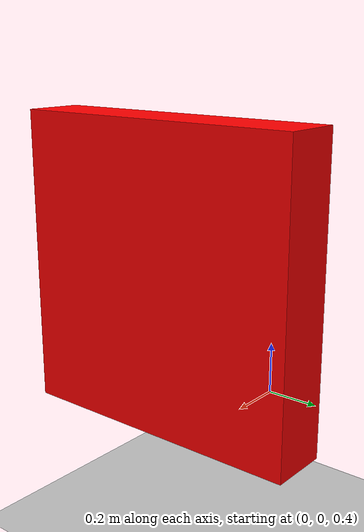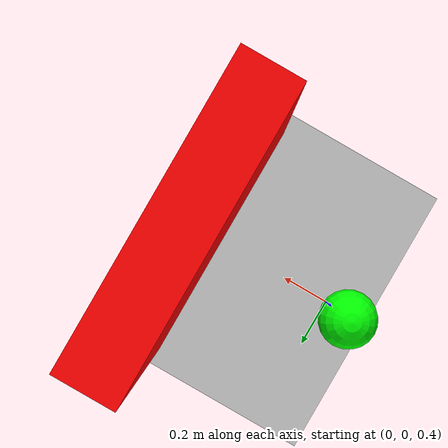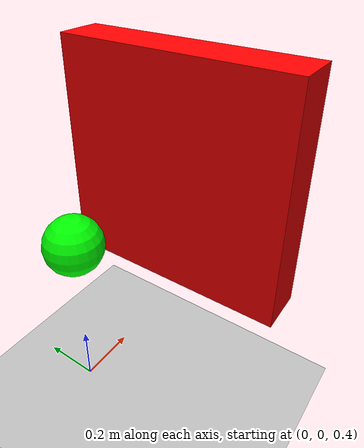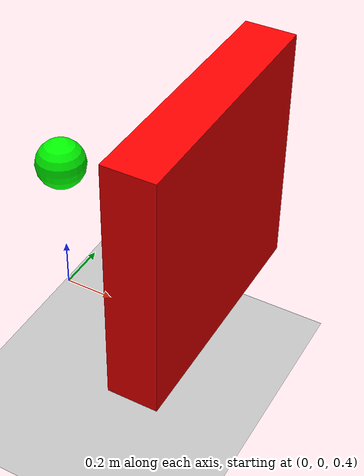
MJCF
<mujoco model="Ball translating along xy-plane">
  <worldbody>
    <light diffuse=".5 .5 .5" pos="0 0 3" dir="0 0 -1"/>
    <geom type="plane" size="2 2 0.1" rgba=".75 .75 .75 1"/>

    <body name="ball" pos="0 0 1">
      <joint name="ball_slide_x" type="slide" axis="1 0 0" range="-2 2"/>
      <joint name="ball_slide_y" type="slide" axis="0 1 0" range="-2 2"/>
      <geom type="sphere" size="0.1" rgba="0 1 0 1"/>
      <site name="ball_site"/>
    </body>

    <!-- Obstacle that lies from x = 0.5 .. 0.7 and y = -0.5 .. 0.5 -->
    <geom name="wall_obstacle" type="box" pos="0.6 0 1" size="0.1 0.5 0.5" rgba="1 0 0 1"/>
  </worldbody>
</mujoco>
